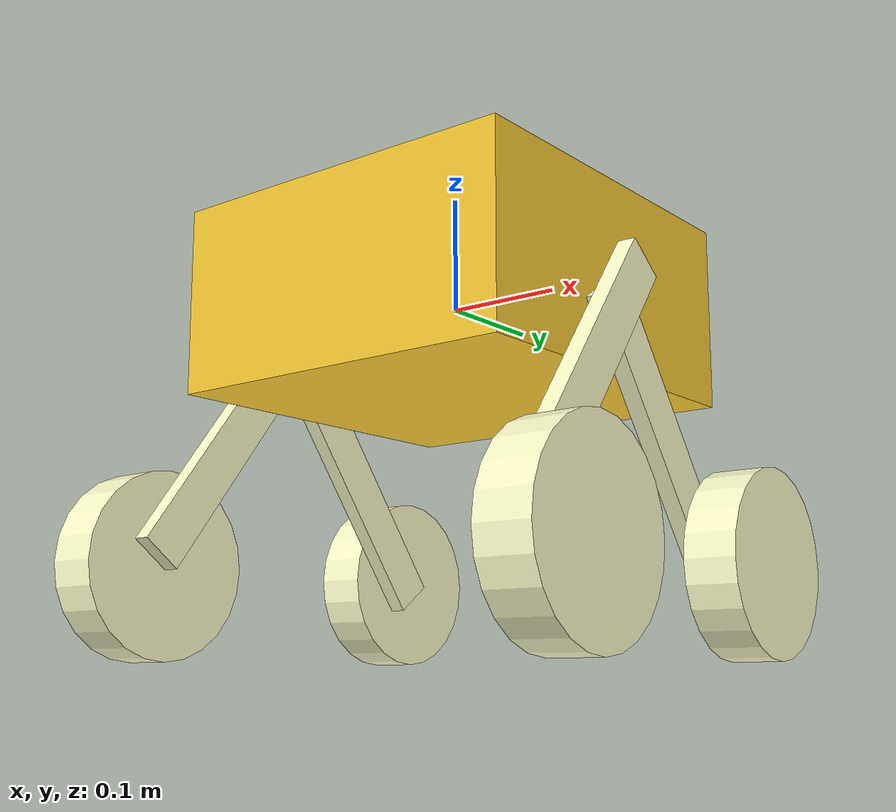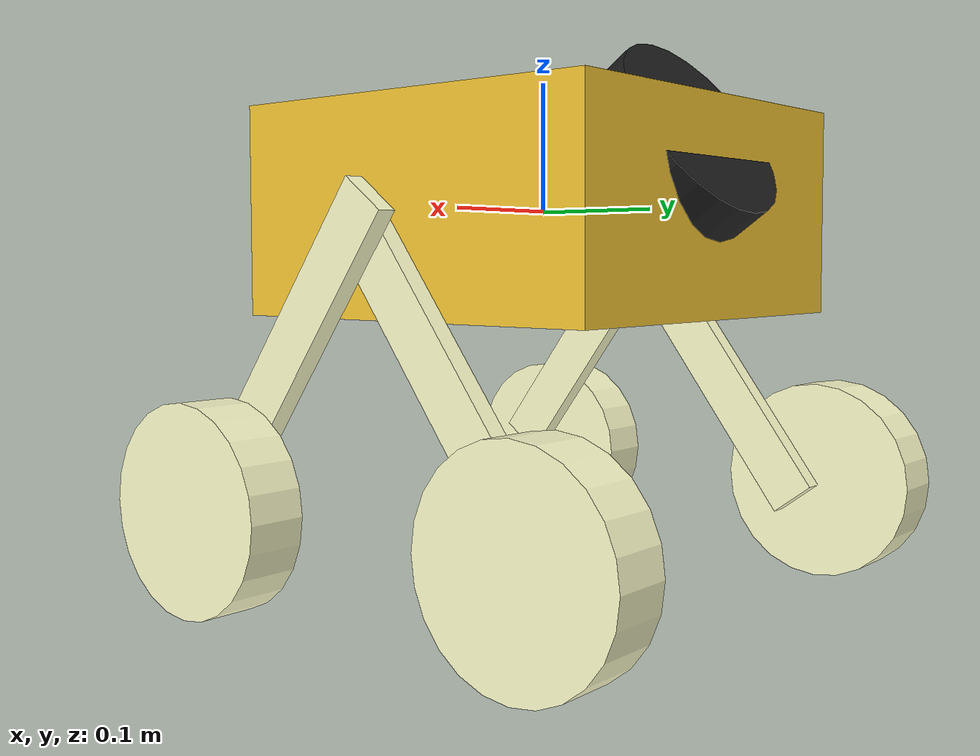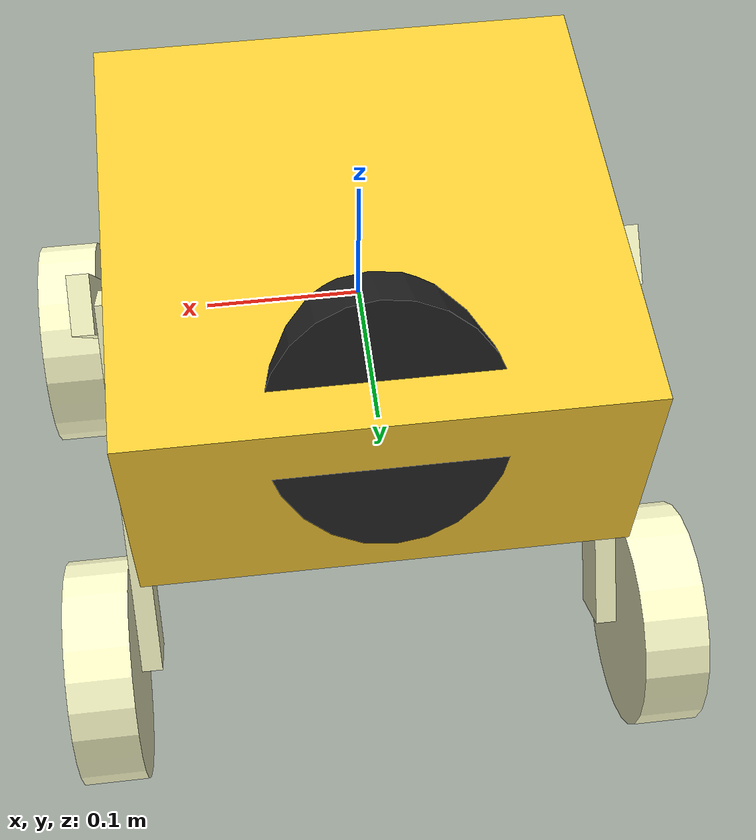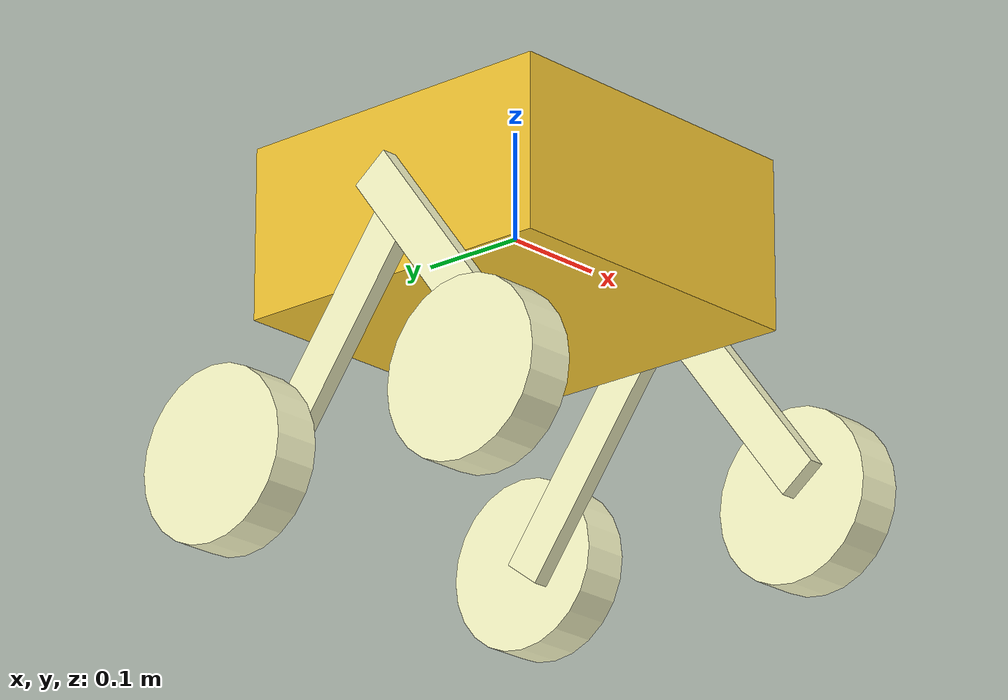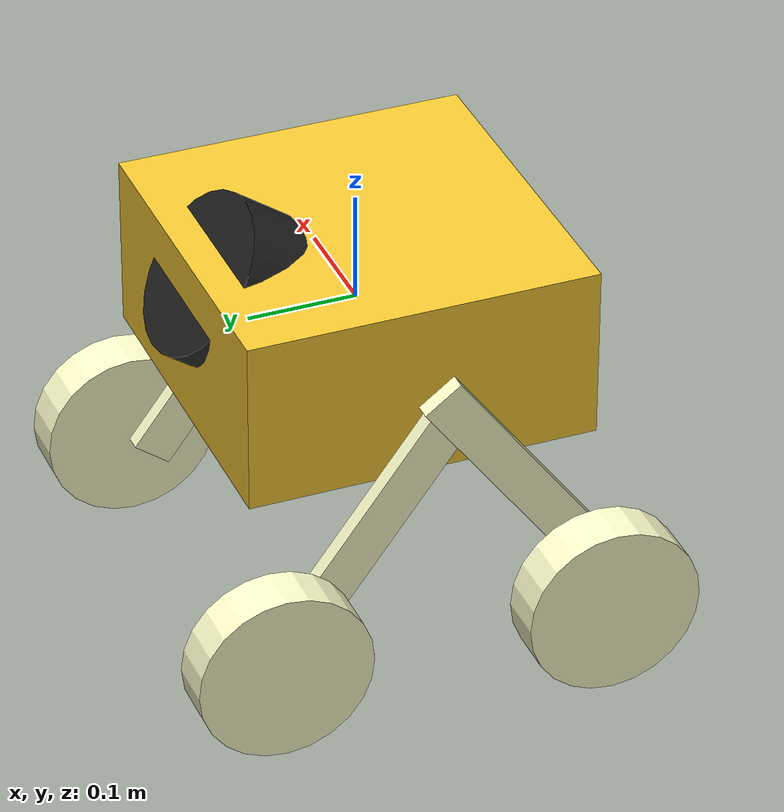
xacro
<?xml version="1.0"?>
<robot xmlns:xacro="http://www.ros.org/wiki/xacro" name="octanis1">

	<!-- NAME OF THE ROBOT -->
	<xacro:property name="name_robot" value="octanis1" />
	<!-- POSITION CONSTANTS (only whose which can change) -->
	<xacro:property name="length_LIDAR" value="0.06" />
	<xacro:property name="radius_LIDAR" value="0.076" />
	<xacro:property name="radius_wheel" value="0.08" />
	<xacro:property name="length_wheel" value="0.045" />
	<!-- INERTIAL CONSTANTS (because they can change) -->
	<xacro:property name="weight_box" value="2.5" />
	<xacro:property name="weight_LIDAR" value="0.2" />
	<xacro:property name="weight_axe" value="0.3" />
	<xacro:property name="weight_wheel" value="0.2" />
	<xacro:property name="std_ixx" value="100" />
	<xacro:property name="std_ixy" value="0" />
	<xacro:property name="std_ixz" value="0" />
	<xacro:property name="std_iyy" value="100" />
	<xacro:property name="std_iyz" value="0" />
	<xacro:property name="std_izz" value="100" />
	<xacro:macro name="default_inertia" params="mass">
		<inertial>
			<origin />
			<mass value="${mass}"/>
			<inertia ixx="${std_ixx}"  ixy="${std_ixy}"  ixz="${std_ixz}" iyy="${std_iyy}" iyz="${std_iyz}" izz="${std_izz}" />
		</inertial>
	</xacro:macro>

	<link name="base_link">
		<xacro:default_inertia mass="${weight_box}"/>
		<visual>
			<origin xyz="0 0 0" rpy="0 0 0"/>
			<geometry>
				<box size="0.32 0.32 0.16" />
			</geometry>
			<material name="yellow">
        		<color rgba="0.97 0.79 0.2 1"/>
        	</material>
		</visual>

		<collision>
			<origin xyz="0 0 0" rpy="0 0 0"/>
			<geometry>
				<box size="0.32 0.32 0.16" />
			</geometry>
		</collision>
	</link>

	<link name="axe_front_left">
		<xacro:default_inertia mass="${weight_axe}"/>
		<visual>
			<origin xyz="0 0.1175 -0.02" rpy="0 0 0"/>
			<geometry>
				<box size="0.015 0.275 0.04" />
			</geometry>
			<material name="white">
        		<color rgba="1 1 0.8 1"/>
        	</material>
		</visual>

		<collision>
			<origin xyz="0 0.1175 -0.02" rpy="0 0 0"/>
			<geometry>
				<box size="0.015 0.275 0.04" />
			</geometry>
		</collision>
	</link>
	<link name="axe_front_right">
		<xacro:default_inertia mass="${weight_axe}"/>
		<visual>
			<origin xyz="0 0.1175 -0.02" rpy="0 0 0"/>
			<geometry>
				<box size="0.015 0.275 0.04" />
			</geometry>
			<material name="white" />
		</visual>

		<collision>
			<origin xyz="0 0.1175 -0.02" rpy="0 0 0"/>
			<geometry>
				<box size="0.015 0.275 0.04" />
			</geometry>
		</collision>
	</link>
	<link name="axe_back_right">
		<xacro:default_inertia mass="${weight_axe}"/>
		<visual>
			<origin xyz="0 0.1175 -0.02" rpy="0 0 0"/>
			<geometry>
				<box size="0.015 0.275 0.04" />
			</geometry>
			<material name="white" />
		</visual>

		<collision>
			<origin xyz="0 0.1175 -0.02" rpy="0 0 0"/>
			<geometry>
				<box size="0.015 0.275 0.04" />
			</geometry>
		</collision>
	</link>
	<link name="axe_back_left">
		<xacro:default_inertia mass="${weight_axe}"/>
		<visual>
			<origin xyz="0 0.1175 -0.02" rpy="0 0 0"/>
			<geometry>
				<box size="0.015 0.275 0.04" />
			</geometry>
			<material name="white" />
		</visual>

		<collision>
			<origin xyz="0 0.1175 -0.02" rpy="0 0 0"/>
			<geometry>
				<box size="0.015 0.275 0.04" />
			</geometry>
		</collision>
	</link>
	<link name="wheel_front_left">
		<xacro:default_inertia mass="${weight_wheel}"/>
		<visual>
			<origin xyz="0 0 0" rpy="0 1.57 0"/>
			<geometry>
				<cylinder length="${length_wheel}" radius="${radius_wheel}"/>
			</geometry>
			<material name="white" />
		</visual>

		<collision>
			<origin xyz="0 0 0" rpy="0 1.57 0"/>
			<geometry>
				<cylinder length="${length_wheel}" radius="${radius_wheel}"/>
			</geometry>
		</collision>
	</link>
	<link name="wheel_front_right">
		<xacro:default_inertia mass="${weight_wheel}"/>
		<visual>
			<origin xyz="0 0 0" rpy="0 1.57 0"/>
			<geometry>
				<cylinder length="${length_wheel}" radius="${radius_wheel}"/>
			</geometry>
			<material name="white" />
		</visual>

		<collision>
			<origin xyz="0 0 0" rpy="0 1.57 0"/>
			<geometry>
				<cylinder length="${length_wheel}" radius="${radius_wheel}"/>
			</geometry>
		</collision>
	</link>
	<link name="wheel_back_right">
		<xacro:default_inertia mass="${weight_wheel}"/>
		<visual>
			<origin xyz="0 0 0" rpy="0 1.57 0"/>
			<geometry>
				<cylinder length="${length_wheel}" radius="${radius_wheel}"/>
			</geometry>
			<material name="white" />
		</visual>

		<collision>
			<origin xyz="0 0 0" rpy="0 1.57 0"/>
			<geometry>
				<cylinder length="${length_wheel}" radius="${radius_wheel}"/>
			</geometry>
		</collision>
	</link>
	<link name="wheel_back_left">
		<xacro:default_inertia mass="${weight_wheel}"/>
		<visual>
			<origin xyz="0 0 0" rpy="0 1.57 0"/>
			<geometry>
				<cylinder length="${length_wheel}" radius="${radius_wheel}"/>
			</geometry>
			<material name="white" />
		</visual>

		<collision>
			<origin xyz="0 0 0" rpy="0 1.57 0"/>
			<geometry>
				<cylinder length="${length_wheel}" radius="0.08"/>
			</geometry>
		</collision>
	</link>
	<link name="LIDAR">
		<xacro:default_inertia mass="${weight_LIDAR}"/>
		<visual>
			<origin xyz="0 0 0" rpy="0 0 0"/> <!-- angle de 55 = 0.96 rad-->
			<geometry>
				<cylinder length="${length_LIDAR}" radius="${radius_LIDAR}"/>
			</geometry>
			<material name="black" />
		</visual>
	</link>
	<link name="IMU" />

	<joint name="joint_axe_front_left" type="continuous">
		<parent link="base_link" />
		<child link="axe_front_left" />
		<origin xyz="-0.1675 0 -0.02" rpy="-0.93 0 0" />
		<axis xyz="1 0 0" />
	</joint>

	<joint name="joint_axe_front_right" type="continuous">
		<parent link="base_link" />
		<child link="axe_front_right" />
		<origin xyz="0.1675 0 -0.02" rpy="-0.93 0 0" />
		<axis xyz="1 0 0" />
	</joint>

	<joint name="joint_axe_back_right" type="continuous">
		<parent link="base_link" />
		<child link="axe_back_right" />
		<origin xyz="0.1825 0 -0.02" rpy="-2.21 0 0" />
		<axis xyz="1 0 0" />
	</joint>

	<joint name="joint_axe_back_left" type="continuous">
		<parent link="base_link" />
		<child link="axe_back_left" />
		<origin xyz="-0.1825 0 -0.02" rpy="-2.21 0 0" />
		<axis xyz="1 0 0" />
	</joint>

	<joint name="joint_LIDAR" type="continuous">
		<parent link="base_link" />
		<child link="LIDAR" />
		<origin xyz="0 0.12 0.04" rpy="-0.96 0 0" />
		<axis xyz="0 0 1" />
	</joint>

	<joint name="joint_IMU" type="fixed">
		<parent link="base_link" />
		<child link="IMU" />
		<origin xyz="0 0.09 0" rpy="0 0 0" />
	</joint>

	<joint name="joint_wheel_front_left" type="continuous">
		<parent link="axe_front_left" />
		<child link="wheel_front_left" />
		<origin xyz="-0.03 0.25 0" rpy="0.93 0 0" />
		<axis xyz="1 0 0" />
	</joint>

	<joint name="joint_wheel_front_right" type="continuous">
		<parent link="axe_front_right" />
		<child link="wheel_front_right" />
		<origin xyz="0.03 0.25 0" rpy="0.93 0 0" />
		<axis xyz="1 0 0" />
	</joint>

	<joint name="joint_wheel_back_right" type="continuous">
		<parent link="axe_back_right" />
		<child link="wheel_back_right" />
		<origin xyz="0.03 0.25 0" rpy="2.21 0 0" />
		<axis xyz="1 0 0" />
	</joint>

	<joint name="joint_wheel_back_left" type="continuous">
		<parent link="axe_back_left" />
		<child link="wheel_back_left" />
		<origin xyz="-0.03 0.25 0" rpy="2.21 0 0" />
		<axis xyz="1 0 0" />
	</joint>
</robot>
